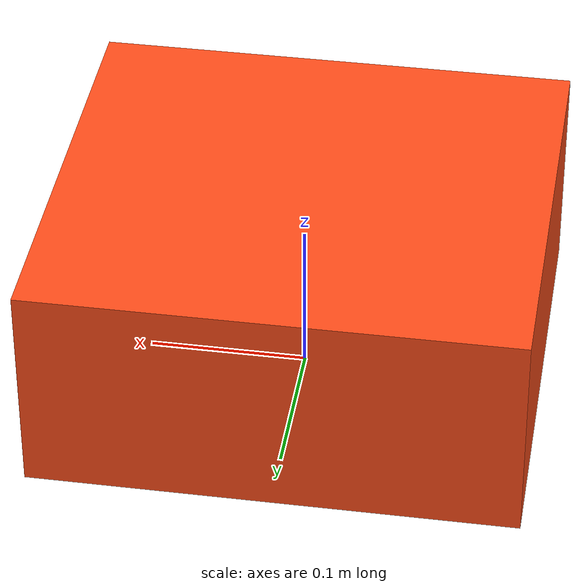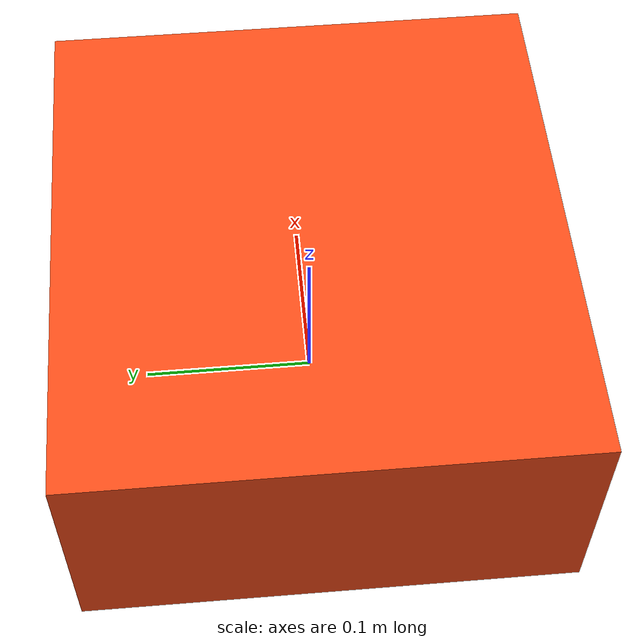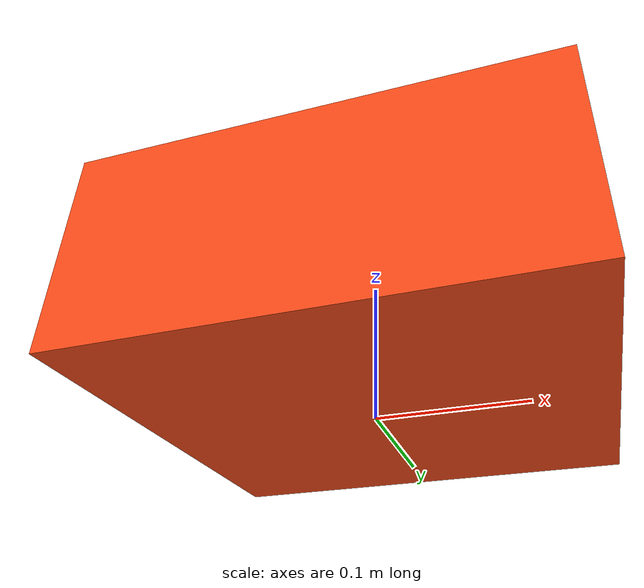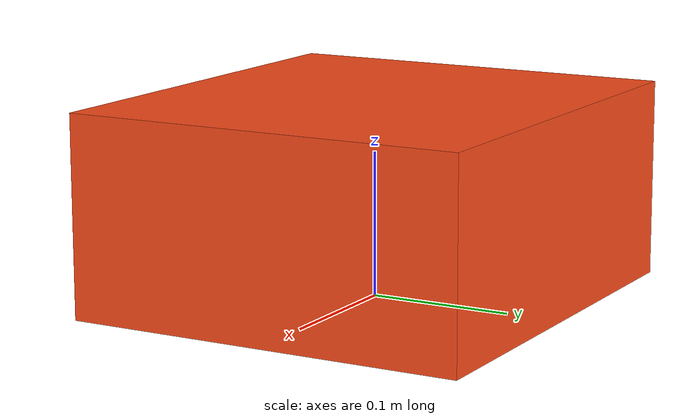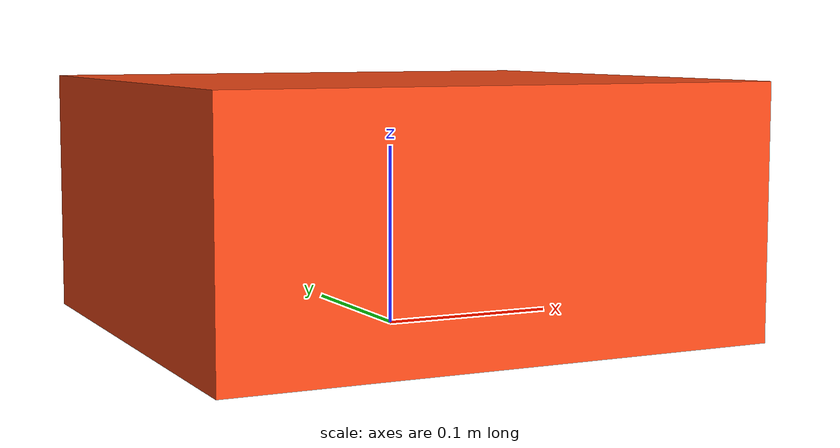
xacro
<?xml version="1.0"?>
<robot xmlns:xacro="http://www.ros.org/wiki/xacro" >

    <material name="white">
        <color rgba="1 1 1 1" />
    </material>

    <material name="orange">
        <color rgba="1 0.3 0.1 1"/>
    </material>

    <material name="blue">
        <color rgba="0.2 0.2 1 1"/>
    </material>

    <material name="black">
        <color rgba="0 0 0 1"/>
    </material>

    <!-- BASE_FOOTPRINT LINK -->

    <link name="base_footprint">
    </link>

    <joint name="base_footprint_joint" type="fixed">
        <parent link="base_footprint"/>
        <child link="base_link"/>
        <origin xyz="0 0 0.069" rpy="0 0 0"/>
    </joint>

    <!-- BASE LINK -->

    <link name="base_link">
        <visual>
            <origin xyz="0 0 0"/>
            <geometry>
                <box size="0.305 0.28 0.138"/>
            </geometry>
            <material name="orange"/>
        </visual>
        <collision>
            <origin xyz="0 0 0"/>
            <geometry>
                <box size="0.305 0.28 0.138"/>
            </geometry>
        </collision>
    </link>

    <!-- LIDAR -->

    <joint name="lidar_joint" type="fixed">
        <parent link="base_link"/>
        <child link="laser"/>
        <origin xyz="0.114 0 0.046" rpy="0 0 0"/>
    </joint>

    <link name="laser">
        <visual>
            <origin xyz="0 0 0"/>
            <geometry>
                <cylinder length="0.02" radius="0.035"/>
            </geometry>
            <material name="white"/>
        </visual>
        <collision>
            <origin xyz="0 0 0"/>
            <geometry>
                <cylinder length="0.02" radius="0.035"/>
            </geometry>
        </collision>
    </link>

    <!-- imu -->
    <joint name="imu_joint" type="fixed">
        <parent link="base_link"/>
        <child link="imu_link"/>
        <origin xyz="-0.05 0.035 0.007" rpy="0 0 0"/>
    </joint>

    <link name="imu_link">
        <visual>
            <origin xyz="0 0 0"/>
            <geometry>
                <box size="0.05 0.05 0.01"/>
            </geometry>
            <material name="orange"/>
        </visual>
        <collision>
            <origin xyz="0 0 0"/>
            <geometry>
                <box size="0.05 0.05 0.01"/>
            </geometry>
        </collision>
    </link>

</robot>
